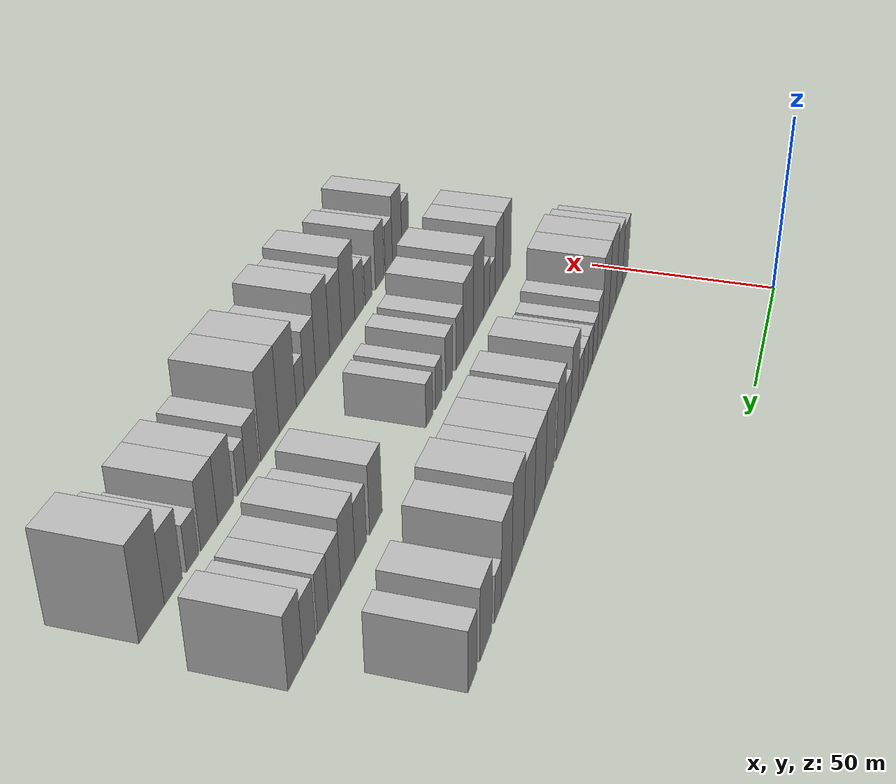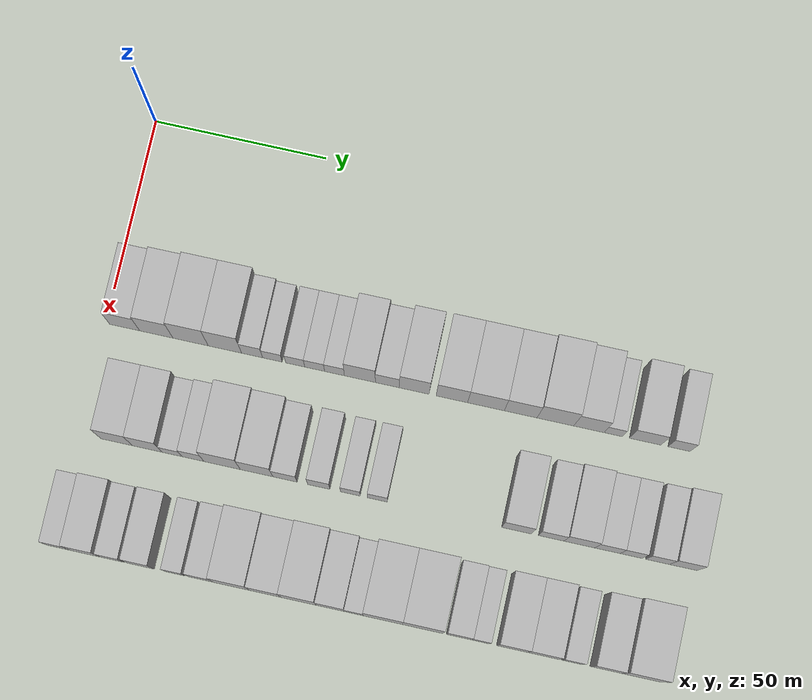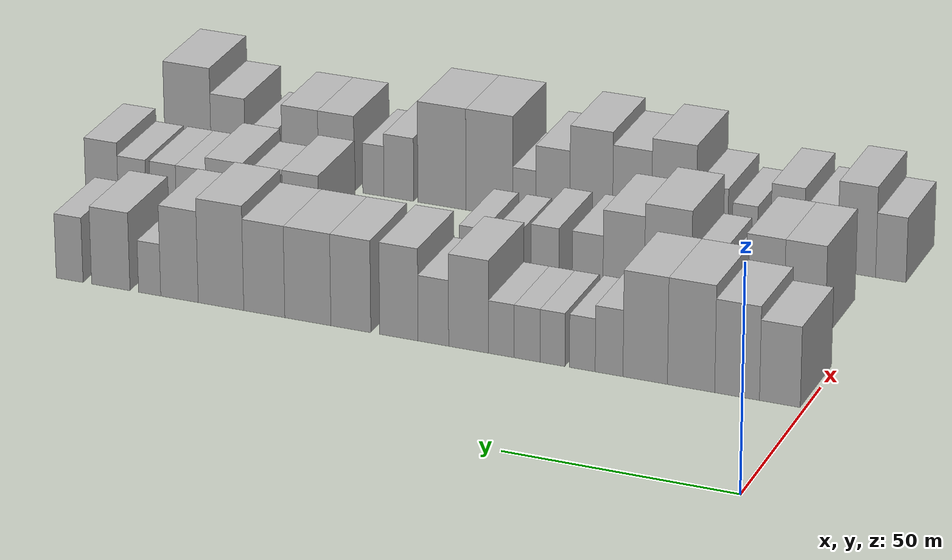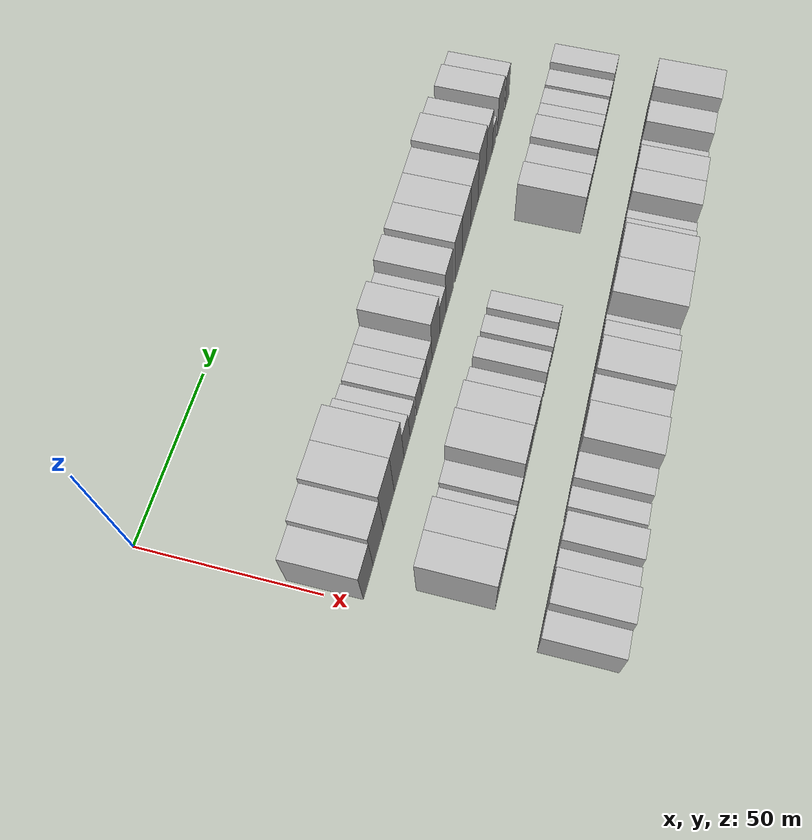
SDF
<sdf version="1.6">
 <world name="default">
  <model name="building_38">
   <static>1</static>
   <pose>50.0000 5.5079 0 0.000000 0.000000 0.000000</pose>
   <link name="link">
    <pose>0 0 9.00 0 0 0</pose>
    <collision name="collision"><geometry><box><size>20.0000 8.6827 18.0000</size></box></geometry></collision>
    <visual name="visual">
     <cast_shadows>0</cast_shadows>
     <geometry><box><size>20.0000 8.6827 18.0000</size></box></geometry>
     <material>
      <script>
       <uri>model://HANNAS_wall/materials/scripts</uri>
       <uri>model://HANNAS_wall/materials/textures</uri>
       <name>vrc/HANNAS_wall</name>
      </script>
     </material>
    </visual>
   </link>
  </model>
  <model name="building_39">
   <static>1</static>
   <pose>50.0000 14.6435 0 0.000000 0.000000 0.000000</pose>
   <link name="link">
    <pose>0 0 10.50 0 0 0</pose>
    <collision name="collision"><geometry><box><size>20.0000 9.5886 21.0000</size></box></geometry></collision>
    <visual name="visual">
     <cast_shadows>0</cast_shadows>
     <geometry><box><size>20.0000 9.5886 21.0000</size></box></geometry>
     <material>
      <script>
       <uri>model://HANNAS_wall/materials/scripts</uri>
       <uri>model://HANNAS_wall/materials/textures</uri>
       <name>vrc/HANNAS_wall</name>
      </script>
     </material>
    </visual>
   </link>
  </model>
  <model name="building_40">
   <static>1</static>
   <pose>50.0000 24.5207 0 0.000000 0.000000 0.000000</pose>
   <link name="link">
    <pose>0 0 12.00 0 0 0</pose>
    <collision name="collision"><geometry><box><size>20.0000 10.1659 24.0000</size></box></geometry></collision>
    <visual name="visual">
     <cast_shadows>0</cast_shadows>
     <geometry><box><size>20.0000 10.1659 24.0000</size></box></geometry>
     <material>
      <script>
       <uri>model://HANNAS_wall/materials/scripts</uri>
       <uri>model://HANNAS_wall/materials/textures</uri>
       <name>vrc/HANNAS_wall</name>
      </script>
     </material>
    </visual>
   </link>
  </model>
  <model name="building_41">
   <static>1</static>
   <pose>50.0000 34.4200 0 0.000000 0.000000 0.000000</pose>
   <link name="link">
    <pose>0 0 12.00 0 0 0</pose>
    <collision name="collision"><geometry><box><size>20.0000 9.6327 24.0000</size></box></geometry></collision>
    <visual name="visual">
     <cast_shadows>0</cast_shadows>
     <geometry><box><size>20.0000 9.6327 24.0000</size></box></geometry>
     <material>
      <script>
       <uri>model://HANNAS_wall/materials/scripts</uri>
       <uri>model://HANNAS_wall/materials/textures</uri>
       <name>vrc/HANNAS_wall</name>
      </script>
     </material>
    </visual>
   </link>
  </model>
  <model name="building_42">
   <static>1</static>
   <pose>50.0000 42.2608 0 0.000000 0.000000 0.000000</pose>
   <link name="link">
    <pose>0 0 7.50 0 0 0</pose>
    <collision name="collision"><geometry><box><size>20.0000 6.0489 15.0000</size></box></geometry></collision>
    <visual name="visual">
     <cast_shadows>0</cast_shadows>
     <geometry><box><size>20.0000 6.0489 15.0000</size></box></geometry>
     <material>
      <script>
       <uri>model://HANNAS_wall/materials/scripts</uri>
       <uri>model://HANNAS_wall/materials/textures</uri>
       <name>vrc/HANNAS_wall</name>
      </script>
     </material>
    </visual>
   </link>
  </model>
  <model name="building_43">
   <static>1</static>
   <pose>50.0000 48.0974 0 0.000000 0.000000 0.000000</pose>
   <link name="link">
    <pose>0 0 6.00 0 0 0</pose>
    <collision name="collision"><geometry><box><size>20.0000 5.6243 12.0000</size></box></geometry></collision>
    <visual name="visual">
     <cast_shadows>0</cast_shadows>
     <geometry><box><size>20.0000 5.6243 12.0000</size></box></geometry>
     <material>
      <script>
       <uri>model://HANNAS_wall/materials/scripts</uri>
       <uri>model://HANNAS_wall/materials/textures</uri>
       <name>vrc/HANNAS_wall</name>
      </script>
     </material>
    </visual>
   </link>
  </model>
  <model name="building_44">
   <static>1</static>
   <pose>50.0000 54.6362 0 0.000000 0.000000 0.000000</pose>
   <link name="link">
    <pose>0 0 6.00 0 0 0</pose>
    <collision name="collision"><geometry><box><size>20.0000 5.4533 12.0000</size></box></geometry></collision>
    <visual name="visual">
     <cast_shadows>0</cast_shadows>
     <geometry><box><size>20.0000 5.4533 12.0000</size></box></geometry>
     <material>
      <script>
       <uri>model://HANNAS_wall/materials/scripts</uri>
       <uri>model://HANNAS_wall/materials/textures</uri>
       <name>vrc/HANNAS_wall</name>
      </script>
     </material>
    </visual>
   </link>
  </model>
  <model name="building_45">
   <static>1</static>
   <pose>50.0000 60.2041 0 0.000000 0.000000 0.000000</pose>
   <link name="link">
    <pose>0 0 6.00 0 0 0</pose>
    <collision name="collision"><geometry><box><size>20.0000 5.6824 12.0000</size></box></geometry></collision>
    <visual name="visual">
     <cast_shadows>0</cast_shadows>
     <geometry><box><size>20.0000 5.6824 12.0000</size></box></geometry>
     <material>
      <script>
       <uri>model://HANNAS_wall/materials/scripts</uri>
       <uri>model://HANNAS_wall/materials/textures</uri>
       <name>vrc/HANNAS_wall</name>
      </script>
     </material>
    </visual>
   </link>
  </model>
  <model name="building_46">
   <static>1</static>
   <pose>50.0000 65.8773 0 0.000000 0.000000 0.000000</pose>
   <link name="link">
    <pose>0 0 6.00 0 0 0</pose>
    <collision name="collision"><geometry><box><size>20.0000 5.6639 12.0000</size></box></geometry></collision>
    <visual name="visual">
     <cast_shadows>0</cast_shadows>
     <geometry><box><size>20.0000 5.6639 12.0000</size></box></geometry>
     <material>
      <script>
       <uri>model://HANNAS_wall/materials/scripts</uri>
       <uri>model://HANNAS_wall/materials/textures</uri>
       <name>vrc/HANNAS_wall</name>
      </script>
     </material>
    </visual>
   </link>
  </model>
  <model name="building_47">
   <static>1</static>
   <pose>50.0000 73.1357 0 0.000000 0.000000 0.000000</pose>
   <link name="link">
    <pose>0 0 10.50 0 0 0</pose>
    <collision name="collision"><geometry><box><size>20.0000 8.8529 21.0000</size></box></geometry></collision>
    <visual name="visual">
     <cast_shadows>0</cast_shadows>
     <geometry><box><size>20.0000 8.8529 21.0000</size></box></geometry>
     <material>
      <script>
       <uri>model://HANNAS_wall/materials/scripts</uri>
       <uri>model://HANNAS_wall/materials/textures</uri>
       <name>vrc/HANNAS_wall</name>
      </script>
     </material>
    </visual>
   </link>
  </model>
  <model name="building_48">
   <static>1</static>
   <pose>50.0000 80.9714 0 0.000000 0.000000 0.000000</pose>
   <link name="link">
    <pose>0 0 7.50 0 0 0</pose>
    <collision name="collision"><geometry><box><size>20.0000 6.8185 15.0000</size></box></geometry></collision>
    <visual name="visual">
     <cast_shadows>0</cast_shadows>
     <geometry><box><size>20.0000 6.8185 15.0000</size></box></geometry>
     <material>
      <script>
       <uri>model://HANNAS_wall/materials/scripts</uri>
       <uri>model://HANNAS_wall/materials/textures</uri>
       <name>vrc/HANNAS_wall</name>
      </script>
     </material>
    </visual>
   </link>
  </model>
  <model name="building_49">
   <static>1</static>
   <pose>50.0000 88.6767 0 0.000000 0.000000 0.000000</pose>
   <link name="link">
    <pose>0 0 10.50 0 0 0</pose>
    <collision name="collision"><geometry><box><size>20.0000 8.5923 21.0000</size></box></geometry></collision>
    <visual name="visual">
     <cast_shadows>0</cast_shadows>
     <geometry><box><size>20.0000 8.5923 21.0000</size></box></geometry>
     <material>
      <script>
       <uri>model://HANNAS_wall/materials/scripts</uri>
       <uri>model://HANNAS_wall/materials/textures</uri>
       <name>vrc/HANNAS_wall</name>
      </script>
     </material>
    </visual>
   </link>
  </model>
  <model name="building_50">
   <static>1</static>
   <pose>50.0000 99.4753 0 0.000000 0.000000 0.000000</pose>
   <link name="link">
    <pose>0 0 10.50 0 0 0</pose>
    <collision name="collision"><geometry><box><size>20.0000 9.0049 21.0000</size></box></geometry></collision>
    <visual name="visual">
     <cast_shadows>0</cast_shadows>
     <geometry><box><size>20.0000 9.0049 21.0000</size></box></geometry>
     <material>
      <script>
       <uri>model://HANNAS_wall/materials/scripts</uri>
       <uri>model://HANNAS_wall/materials/textures</uri>
       <name>vrc/HANNAS_wall</name>
      </script>
     </material>
    </visual>
   </link>
  </model>
  <model name="building_51">
   <static>1</static>
   <pose>50.0000 109.2028 0 0.000000 0.000000 0.000000</pose>
   <link name="link">
    <pose>0 0 10.50 0 0 0</pose>
    <collision name="collision"><geometry><box><size>20.0000 10.4499 21.0000</size></box></geometry></collision>
    <visual name="visual">
     <cast_shadows>0</cast_shadows>
     <geometry><box><size>20.0000 10.4499 21.0000</size></box></geometry>
     <material>
      <script>
       <uri>model://HANNAS_wall/materials/scripts</uri>
       <uri>model://HANNAS_wall/materials/textures</uri>
       <name>vrc/HANNAS_wall</name>
      </script>
     </material>
    </visual>
   </link>
  </model>
  <model name="building_52">
   <static>1</static>
   <pose>50.0000 119.1174 0 0.000000 0.000000 0.000000</pose>
   <link name="link">
    <pose>0 0 10.50 0 0 0</pose>
    <collision name="collision"><geometry><box><size>20.0000 9.3793 21.0000</size></box></geometry></collision>
    <visual name="visual">
     <cast_shadows>0</cast_shadows>
     <geometry><box><size>20.0000 9.3793 21.0000</size></box></geometry>
     <material>
      <script>
       <uri>model://HANNAS_wall/materials/scripts</uri>
       <uri>model://HANNAS_wall/materials/textures</uri>
       <name>vrc/HANNAS_wall</name>
      </script>
     </material>
    </visual>
   </link>
  </model>
  <model name="building_53">
   <static>1</static>
   <pose>50.0000 129.0357 0 0.000000 0.000000 0.000000</pose>
   <link name="link">
    <pose>0 0 12.00 0 0 0</pose>
    <collision name="collision"><geometry><box><size>20.0000 10.4573 24.0000</size></box></geometry></collision>
    <visual name="visual">
     <cast_shadows>0</cast_shadows>
     <geometry><box><size>20.0000 10.4573 24.0000</size></box></geometry>
     <material>
      <script>
       <uri>model://HANNAS_wall/materials/scripts</uri>
       <uri>model://HANNAS_wall/materials/textures</uri>
       <name>vrc/HANNAS_wall</name>
      </script>
     </material>
    </visual>
   </link>
  </model>
  <model name="building_54">
   <static>1</static>
   <pose>50.0000 138.5968 0 0.000000 0.000000 0.000000</pose>
   <link name="link">
    <pose>0 0 10.50 0 0 0</pose>
    <collision name="collision"><geometry><box><size>20.0000 8.6649 21.0000</size></box></geometry></collision>
    <visual name="visual">
     <cast_shadows>0</cast_shadows>
     <geometry><box><size>20.0000 8.6649 21.0000</size></box></geometry>
     <material>
      <script>
       <uri>model://HANNAS_wall/materials/scripts</uri>
       <uri>model://HANNAS_wall/materials/textures</uri>
       <name>vrc/HANNAS_wall</name>
      </script>
     </material>
    </visual>
   </link>
  </model>
  <model name="building_55">
   <static>1</static>
   <pose>50.0000 145.4985 0 0.000000 0.000000 0.000000</pose>
   <link name="link">
    <pose>0 0 6.00 0 0 0</pose>
    <collision name="collision"><geometry><box><size>20.0000 5.1385 12.0000</size></box></geometry></collision>
    <visual name="visual">
     <cast_shadows>0</cast_shadows>
     <geometry><box><size>20.0000 5.1385 12.0000</size></box></geometry>
     <material>
      <script>
       <uri>model://HANNAS_wall/materials/scripts</uri>
       <uri>model://HANNAS_wall/materials/textures</uri>
       <name>vrc/HANNAS_wall</name>
      </script>
     </material>
    </visual>
   </link>
  </model>
  <model name="building_56">
   <static>1</static>
   <pose>50.0000 154.5422 0 0.000000 0.000000 0.000000</pose>
   <link name="link">
    <pose>0 0 9.00 0 0 0</pose>
    <collision name="collision"><geometry><box><size>20.0000 8.9488 18.0000</size></box></geometry></collision>
    <visual name="visual">
     <cast_shadows>0</cast_shadows>
     <geometry><box><size>20.0000 8.9488 18.0000</size></box></geometry>
     <material>
      <script>
       <uri>model://HANNAS_wall/materials/scripts</uri>
       <uri>model://HANNAS_wall/materials/textures</uri>
       <name>vrc/HANNAS_wall</name>
      </script>
     </material>
    </visual>
   </link>
  </model>
  <model name="building_57">
   <static>1</static>
   <pose>50.0000 164.1577 0 0.000000 0.000000 0.000000</pose>
   <link name="link">
    <pose>0 0 7.50 0 0 0</pose>
    <collision name="collision"><geometry><box><size>20.0000 6.2822 15.0000</size></box></geometry></collision>
    <visual name="visual">
     <cast_shadows>0</cast_shadows>
     <geometry><box><size>20.0000 6.2822 15.0000</size></box></geometry>
     <material>
      <script>
       <uri>model://HANNAS_wall/materials/scripts</uri>
       <uri>model://HANNAS_wall/materials/textures</uri>
       <name>vrc/HANNAS_wall</name>
      </script>
     </material>
    </visual>
   </link>
  </model>
  <model name="building_115">
   <static>1</static>
   <pose>82.0000 11.0297 0 0.000000 0.000000 0.000000</pose>
   <link name="link">
    <pose>0 0 10.50 0 0 0</pose>
    <collision name="collision"><geometry><box><size>20.0000 9.0230 21.0000</size></box></geometry></collision>
    <visual name="visual">
     <cast_shadows>0</cast_shadows>
     <geometry><box><size>20.0000 9.0230 21.0000</size></box></geometry>
     <material>
      <script>
       <uri>model://HANNAS_wall/materials/scripts</uri>
       <uri>model://HANNAS_wall/materials/textures</uri>
       <name>vrc/HANNAS_wall</name>
      </script>
     </material>
    </visual>
   </link>
  </model>
  <model name="building_116">
   <static>1</static>
   <pose>82.0000 19.7604 0 0.000000 0.000000 0.000000</pose>
   <link name="link">
    <pose>0 0 10.50 0 0 0</pose>
    <collision name="collision"><geometry><box><size>20.0000 8.4385 21.0000</size></box></geometry></collision>
    <visual name="visual">
     <cast_shadows>0</cast_shadows>
     <geometry><box><size>20.0000 8.4385 21.0000</size></box></geometry>
     <material>
      <script>
       <uri>model://HANNAS_wall/materials/scripts</uri>
       <uri>model://HANNAS_wall/materials/textures</uri>
       <name>vrc/HANNAS_wall</name>
      </script>
     </material>
    </visual>
   </link>
  </model>
  <model name="building_117">
   <static>1</static>
   <pose>82.0000 26.8236 0 0.000000 0.000000 0.000000</pose>
   <link name="link">
    <pose>0 0 6.00 0 0 0</pose>
    <collision name="collision"><geometry><box><size>20.0000 5.6878 12.0000</size></box></geometry></collision>
    <visual name="visual">
     <cast_shadows>0</cast_shadows>
     <geometry><box><size>20.0000 5.6878 12.0000</size></box></geometry>
     <material>
      <script>
       <uri>model://HANNAS_wall/materials/scripts</uri>
       <uri>model://HANNAS_wall/materials/textures</uri>
       <name>vrc/HANNAS_wall</name>
      </script>
     </material>
    </visual>
   </link>
  </model>
  <model name="building_118">
   <static>1</static>
   <pose>82.0000 32.8064 0 0.000000 0.000000 0.000000</pose>
   <link name="link">
    <pose>0 0 7.50 0 0 0</pose>
    <collision name="collision"><geometry><box><size>20.0000 6.2777 15.0000</size></box></geometry></collision>
    <visual name="visual">
     <cast_shadows>0</cast_shadows>
     <geometry><box><size>20.0000 6.2777 15.0000</size></box></geometry>
     <material>
      <script>
       <uri>model://HANNAS_wall/materials/scripts</uri>
       <uri>model://HANNAS_wall/materials/textures</uri>
       <name>vrc/HANNAS_wall</name>
      </script>
     </material>
    </visual>
   </link>
  </model>
  <model name="building_119">
   <static>1</static>
   <pose>82.0000 41.1427 0 0.000000 0.000000 0.000000</pose>
   <link name="link">
    <pose>0 0 12.00 0 0 0</pose>
    <collision name="collision"><geometry><box><size>20.0000 10.3948 24.0000</size></box></geometry></collision>
    <visual name="visual">
     <cast_shadows>0</cast_shadows>
     <geometry><box><size>20.0000 10.3948 24.0000</size></box></geometry>
     <material>
      <script>
       <uri>model://HANNAS_wall/materials/scripts</uri>
       <uri>model://HANNAS_wall/materials/textures</uri>
       <name>vrc/HANNAS_wall</name>
      </script>
     </material>
    </visual>
   </link>
  </model>
  <model name="building_120">
   <static>1</static>
   <pose>82.0000 50.9652 0 0.000000 0.000000 0.000000</pose>
   <link name="link">
    <pose>0 0 10.50 0 0 0</pose>
    <collision name="collision"><geometry><box><size>20.0000 9.2502 21.0000</size></box></geometry></collision>
    <visual name="visual">
     <cast_shadows>0</cast_shadows>
     <geometry><box><size>20.0000 9.2502 21.0000</size></box></geometry>
     <material>
      <script>
       <uri>model://HANNAS_wall/materials/scripts</uri>
       <uri>model://HANNAS_wall/materials/textures</uri>
       <name>vrc/HANNAS_wall</name>
      </script>
     </material>
    </visual>
   </link>
  </model>
  <model name="building_121">
   <static>1</static>
   <pose>82.0000 59.0543 0 0.000000 0.000000 0.000000</pose>
   <link name="link">
    <pose>0 0 7.50 0 0 0</pose>
    <collision name="collision"><geometry><box><size>20.0000 6.9281 15.0000</size></box></geometry></collision>
    <visual name="visual">
     <cast_shadows>0</cast_shadows>
     <geometry><box><size>20.0000 6.9281 15.0000</size></box></geometry>
     <material>
      <script>
       <uri>model://HANNAS_wall/materials/scripts</uri>
       <uri>model://HANNAS_wall/materials/textures</uri>
       <name>vrc/HANNAS_wall</name>
      </script>
     </material>
    </visual>
   </link>
  </model>
  <model name="building_122">
   <static>1</static>
   <pose>82.0000 68.6652 0 0.000000 0.000000 0.000000</pose>
   <link name="link">
    <pose>0 0 7.50 0 0 0</pose>
    <collision name="collision"><geometry><box><size>20.0000 6.2937 15.0000</size></box></geometry></collision>
    <visual name="visual">
     <cast_shadows>0</cast_shadows>
     <geometry><box><size>20.0000 6.2937 15.0000</size></box></geometry>
     <material>
      <script>
       <uri>model://HANNAS_wall/materials/scripts</uri>
       <uri>model://HANNAS_wall/materials/textures</uri>
       <name>vrc/HANNAS_wall</name>
      </script>
     </material>
    </visual>
   </link>
  </model>
  <model name="building_123">
   <static>1</static>
   <pose>82.0000 77.6128 0 0.000000 0.000000 0.000000</pose>
   <link name="link">
    <pose>0 0 6.00 0 0 0</pose>
    <collision name="collision"><geometry><box><size>20.0000 5.6014 12.0000</size></box></geometry></collision>
    <visual name="visual">
     <cast_shadows>0</cast_shadows>
     <geometry><box><size>20.0000 5.6014 12.0000</size></box></geometry>
     <material>
      <script>
       <uri>model://HANNAS_wall/materials/scripts</uri>
       <uri>model://HANNAS_wall/materials/textures</uri>
       <name>vrc/HANNAS_wall</name>
      </script>
     </material>
    </visual>
   </link>
  </model>
  <model name="building_124">
   <static>1</static>
   <pose>82.0000 85.2448 0 0.000000 0.000000 0.000000</pose>
   <link name="link">
    <pose>0 0 6.00 0 0 0</pose>
    <collision name="collision"><geometry><box><size>20.0000 5.6626 12.0000</size></box></geometry></collision>
    <visual name="visual">
     <cast_shadows>0</cast_shadows>
     <geometry><box><size>20.0000 5.6626 12.0000</size></box></geometry>
     <material>
      <script>
       <uri>model://HANNAS_wall/materials/scripts</uri>
       <uri>model://HANNAS_wall/materials/textures</uri>
       <name>vrc/HANNAS_wall</name>
      </script>
     </material>
    </visual>
   </link>
  </model>
  <model name="building_125">
   <static>1</static>
   <pose>82.0000 124.6695 0 0.000000 0.000000 0.000000</pose>
   <link name="link">
    <pose>0 0 9.00 0 0 0</pose>
    <collision name="collision"><geometry><box><size>20.0000 8.3956 18.0000</size></box></geometry></collision>
    <visual name="visual">
     <cast_shadows>0</cast_shadows>
     <geometry><box><size>20.0000 8.3956 18.0000</size></box></geometry>
     <material>
      <script>
       <uri>model://HANNAS_wall/materials/scripts</uri>
       <uri>model://HANNAS_wall/materials/textures</uri>
       <name>vrc/HANNAS_wall</name>
      </script>
     </material>
    </visual>
   </link>
  </model>
  <model name="building_126">
   <static>1</static>
   <pose>82.0000 134.4779 0 0.000000 0.000000 0.000000</pose>
   <link name="link">
    <pose>0 0 7.50 0 0 0</pose>
    <collision name="collision"><geometry><box><size>20.0000 7.2212 15.0000</size></box></geometry></collision>
    <visual name="visual">
     <cast_shadows>0</cast_shadows>
     <geometry><box><size>20.0000 7.2212 15.0000</size></box></geometry>
     <material>
      <script>
       <uri>model://HANNAS_wall/materials/scripts</uri>
       <uri>model://HANNAS_wall/materials/textures</uri>
       <name>vrc/HANNAS_wall</name>
      </script>
     </material>
    </visual>
   </link>
  </model>
  <model name="building_127">
   <static>1</static>
   <pose>82.0000 142.4608 0 0.000000 0.000000 0.000000</pose>
   <link name="link">
    <pose>0 0 9.00 0 0 0</pose>
    <collision name="collision"><geometry><box><size>20.0000 8.7448 18.0000</size></box></geometry></collision>
    <visual name="visual">
     <cast_shadows>0</cast_shadows>
     <geometry><box><size>20.0000 8.7448 18.0000</size></box></geometry>
     <material>
      <script>
       <uri>model://HANNAS_wall/materials/scripts</uri>
       <uri>model://HANNAS_wall/materials/textures</uri>
       <name>vrc/HANNAS_wall</name>
      </script>
     </material>
    </visual>
   </link>
  </model>
  <model name="building_128">
   <static>1</static>
   <pose>82.0000 150.3824 0 0.000000 0.000000 0.000000</pose>
   <link name="link">
    <pose>0 0 7.50 0 0 0</pose>
    <collision name="collision"><geometry><box><size>20.0000 7.0984 15.0000</size></box></geometry></collision>
    <visual name="visual">
     <cast_shadows>0</cast_shadows>
     <geometry><box><size>20.0000 7.0984 15.0000</size></box></geometry>
     <material>
      <script>
       <uri>model://HANNAS_wall/materials/scripts</uri>
       <uri>model://HANNAS_wall/materials/textures</uri>
       <name>vrc/HANNAS_wall</name>
      </script>
     </material>
    </visual>
   </link>
  </model>
  <model name="building_129">
   <static>1</static>
   <pose>82.0000 157.0256 0 0.000000 0.000000 0.000000</pose>
   <link name="link">
    <pose>0 0 7.50 0 0 0</pose>
    <collision name="collision"><geometry><box><size>20.0000 6.1881 15.0000</size></box></geometry></collision>
    <visual name="visual">
     <cast_shadows>0</cast_shadows>
     <geometry><box><size>20.0000 6.1881 15.0000</size></box></geometry>
     <material>
      <script>
       <uri>model://HANNAS_wall/materials/scripts</uri>
       <uri>model://HANNAS_wall/materials/textures</uri>
       <name>vrc/HANNAS_wall</name>
      </script>
     </material>
    </visual>
   </link>
  </model>
  <model name="building_130">
   <static>1</static>
   <pose>82.0000 164.4597 0 0.000000 0.000000 0.000000</pose>
   <link name="link">
    <pose>0 0 7.50 0 0 0</pose>
    <collision name="collision"><geometry><box><size>20.0000 6.6800 15.0000</size></box></geometry></collision>
    <visual name="visual">
     <cast_shadows>0</cast_shadows>
     <geometry><box><size>20.0000 6.6800 15.0000</size></box></geometry>
     <material>
      <script>
       <uri>model://HANNAS_wall/materials/scripts</uri>
       <uri>model://HANNAS_wall/materials/textures</uri>
       <name>vrc/HANNAS_wall</name>
      </script>
     </material>
    </visual>
   </link>
  </model>
  <model name="building_131">
   <static>1</static>
   <pose>82.0000 171.6829 0 0.000000 0.000000 0.000000</pose>
   <link name="link">
    <pose>0 0 9.00 0 0 0</pose>
    <collision name="collision"><geometry><box><size>20.0000 7.7664 18.0000</size></box></geometry></collision>
    <visual name="visual">
     <cast_shadows>0</cast_shadows>
     <geometry><box><size>20.0000 7.7664 18.0000</size></box></geometry>
     <material>
      <script>
       <uri>model://HANNAS_wall/materials/scripts</uri>
       <uri>model://HANNAS_wall/materials/textures</uri>
       <name>vrc/HANNAS_wall</name>
      </script>
     </material>
    </visual>
   </link>
  </model>
  <model name="building_187">
   <static>1</static>
   <pose>114.0000 2.4577 0 0.000000 0.000000 0.000000</pose>
   <link name="link">
    <pose>0 0 7.50 0 0 0</pose>
    <collision name="collision"><geometry><box><size>20.0000 6.7520 15.0000</size></box></geometry></collision>
    <visual name="visual">
     <cast_shadows>0</cast_shadows>
     <geometry><box><size>20.0000 6.7520 15.0000</size></box></geometry>
     <material>
      <script>
       <uri>model://HANNAS_wall/materials/scripts</uri>
       <uri>model://HANNAS_wall/materials/textures</uri>
       <name>vrc/HANNAS_wall</name>
      </script>
     </material>
    </visual>
   </link>
  </model>
  <model name="building_188">
   <static>1</static>
   <pose>114.0000 10.1117 0 0.000000 0.000000 0.000000</pose>
   <link name="link">
    <pose>0 0 10.50 0 0 0</pose>
    <collision name="collision"><geometry><box><size>20.0000 8.5560 21.0000</size></box></geometry></collision>
    <visual name="visual">
     <cast_shadows>0</cast_shadows>
     <geometry><box><size>20.0000 8.5560 21.0000</size></box></geometry>
     <material>
      <script>
       <uri>model://HANNAS_wall/materials/scripts</uri>
       <uri>model://HANNAS_wall/materials/textures</uri>
       <name>vrc/HANNAS_wall</name>
      </script>
     </material>
    </visual>
   </link>
  </model>
  <model name="building_189">
   <static>1</static>
   <pose>114.0000 17.6340 0 0.000000 0.000000 0.000000</pose>
   <link name="link">
    <pose>0 0 7.50 0 0 0</pose>
    <collision name="collision"><geometry><box><size>20.0000 6.4886 15.0000</size></box></geometry></collision>
    <visual name="visual">
     <cast_shadows>0</cast_shadows>
     <geometry><box><size>20.0000 6.4886 15.0000</size></box></geometry>
     <material>
      <script>
       <uri>model://HANNAS_wall/materials/scripts</uri>
       <uri>model://HANNAS_wall/materials/textures</uri>
       <name>vrc/HANNAS_wall</name>
      </script>
     </material>
    </visual>
   </link>
  </model>
  <model name="building_190">
   <static>1</static>
   <pose>114.0000 25.6391 0 0.000000 0.000000 0.000000</pose>
   <link name="link">
    <pose>0 0 9.00 0 0 0</pose>
    <collision name="collision"><geometry><box><size>20.0000 7.5216 18.0000</size></box></geometry></collision>
    <visual name="visual">
     <cast_shadows>0</cast_shadows>
     <geometry><box><size>20.0000 7.5216 18.0000</size></box></geometry>
     <material>
      <script>
       <uri>model://HANNAS_wall/materials/scripts</uri>
       <uri>model://HANNAS_wall/materials/textures</uri>
       <name>vrc/HANNAS_wall</name>
      </script>
     </material>
    </visual>
   </link>
  </model>
  <model name="building_191">
   <static>1</static>
   <pose>114.0000 35.2346 0 0.000000 0.000000 0.000000</pose>
   <link name="link">
    <pose>0 0 6.00 0 0 0</pose>
    <collision name="collision"><geometry><box><size>20.0000 5.6695 12.0000</size></box></geometry></collision>
    <visual name="visual">
     <cast_shadows>0</cast_shadows>
     <geometry><box><size>20.0000 5.6695 12.0000</size></box></geometry>
     <material>
      <script>
       <uri>model://HANNAS_wall/materials/scripts</uri>
       <uri>model://HANNAS_wall/materials/textures</uri>
       <name>vrc/HANNAS_wall</name>
      </script>
     </material>
    </visual>
   </link>
  </model>
  <model name="building_192">
   <static>1</static>
   <pose>114.0000 42.6597 0 0.000000 0.000000 0.000000</pose>
   <link name="link">
    <pose>0 0 7.50 0 0 0</pose>
    <collision name="collision"><geometry><box><size>20.0000 7.1807 15.0000</size></box></geometry></collision>
    <visual name="visual">
     <cast_shadows>0</cast_shadows>
     <geometry><box><size>20.0000 7.1807 15.0000</size></box></geometry>
     <material>
      <script>
       <uri>model://HANNAS_wall/materials/scripts</uri>
       <uri>model://HANNAS_wall/materials/textures</uri>
       <name>vrc/HANNAS_wall</name>
      </script>
     </material>
    </visual>
   </link>
  </model>
  <model name="building_193">
   <static>1</static>
   <pose>114.0000 51.3351 0 0.000000 0.000000 0.000000</pose>
   <link name="link">
    <pose>0 0 12.00 0 0 0</pose>
    <collision name="collision"><geometry><box><size>20.0000 10.1701 24.0000</size></box></geometry></collision>
    <visual name="visual">
     <cast_shadows>0</cast_shadows>
     <geometry><box><size>20.0000 10.1701 24.0000</size></box></geometry>
     <material>
      <script>
       <uri>model://HANNAS_wall/materials/scripts</uri>
       <uri>model://HANNAS_wall/materials/textures</uri>
       <name>vrc/HANNAS_wall</name>
      </script>
     </material>
    </visual>
   </link>
  </model>
  <model name="building_194">
   <static>1</static>
   <pose>114.0000 60.8844 0 0.000000 0.000000 0.000000</pose>
   <link name="link">
    <pose>0 0 10.50 0 0 0</pose>
    <collision name="collision"><geometry><box><size>20.0000 8.9285 21.0000</size></box></geometry></collision>
    <visual name="visual">
     <cast_shadows>0</cast_shadows>
     <geometry><box><size>20.0000 8.9285 21.0000</size></box></geometry>
     <material>
      <script>
       <uri>model://HANNAS_wall/materials/scripts</uri>
       <uri>model://HANNAS_wall/materials/textures</uri>
       <name>vrc/HANNAS_wall</name>
      </script>
     </material>
    </visual>
   </link>
  </model>
  <model name="building_195">
   <static>1</static>
   <pose>114.0000 70.2712 0 0.000000 0.000000 0.000000</pose>
   <link name="link">
    <pose>0 0 12.00 0 0 0</pose>
    <collision name="collision"><geometry><box><size>20.0000 9.8452 24.0000</size></box></geometry></collision>
    <visual name="visual">
     <cast_shadows>0</cast_shadows>
     <geometry><box><size>20.0000 9.8452 24.0000</size></box></geometry>
     <material>
      <script>
       <uri>model://HANNAS_wall/materials/scripts</uri>
       <uri>model://HANNAS_wall/materials/textures</uri>
       <name>vrc/HANNAS_wall</name>
      </script>
     </material>
    </visual>
   </link>
  </model>
  <model name="building_196">
   <static>1</static>
   <pose>114.0000 79.1539 0 0.000000 0.000000 0.000000</pose>
   <link name="link">
    <pose>0 0 9.00 0 0 0</pose>
    <collision name="collision"><geometry><box><size>20.0000 7.9202 18.0000</size></box></geometry></collision>
    <visual name="visual">
     <cast_shadows>0</cast_shadows>
     <geometry><box><size>20.0000 7.9202 18.0000</size></box></geometry>
     <material>
      <script>
       <uri>model://HANNAS_wall/materials/scripts</uri>
       <uri>model://HANNAS_wall/materials/textures</uri>
       <name>vrc/HANNAS_wall</name>
      </script>
     </material>
    </visual>
   </link>
  </model>
  <model name="building_197">
   <static>1</static>
   <pose>114.0000 85.7669 0 0.000000 0.000000 0.000000</pose>
   <link name="link">
    <pose>0 0 6.00 0 0 0</pose>
    <collision name="collision"><geometry><box><size>20.0000 5.3058 12.0000</size></box></geometry></collision>
    <visual name="visual">
     <cast_shadows>0</cast_shadows>
     <geometry><box><size>20.0000 5.3058 12.0000</size></box></geometry>
     <material>
      <script>
       <uri>model://HANNAS_wall/materials/scripts</uri>
       <uri>model://HANNAS_wall/materials/textures</uri>
       <name>vrc/HANNAS_wall</name>
      </script>
     </material>
    </visual>
   </link>
  </model>
  <model name="building_198">
   <static>1</static>
   <pose>114.0000 93.9268 0 0.000000 0.000000 0.000000</pose>
   <link name="link">
    <pose>0 0 12.00 0 0 0</pose>
    <collision name="collision"><geometry><box><size>20.0000 11.0141 24.0000</size></box></geometry></collision>
    <visual name="visual">
     <cast_shadows>0</cast_shadows>
     <geometry><box><size>20.0000 11.0141 24.0000</size></box></geometry>
     <material>
      <script>
       <uri>model://HANNAS_wall/materials/scripts</uri>
       <uri>model://HANNAS_wall/materials/textures</uri>
       <name>vrc/HANNAS_wall</name>
      </script>
     </material>
    </visual>
   </link>
  </model>
  <model name="building_199">
   <static>1</static>
   <pose>114.0000 105.0848 0 0.000000 0.000000 0.000000</pose>
   <link name="link">
    <pose>0 0 12.00 0 0 0</pose>
    <collision name="collision"><geometry><box><size>20.0000 11.3018 24.0000</size></box></geometry></collision>
    <visual name="visual">
     <cast_shadows>0</cast_shadows>
     <geometry><box><size>20.0000 11.3018 24.0000</size></box></geometry>
     <material>
      <script>
       <uri>model://HANNAS_wall/materials/scripts</uri>
       <uri>model://HANNAS_wall/materials/textures</uri>
       <name>vrc/HANNAS_wall</name>
      </script>
     </material>
    </visual>
   </link>
  </model>
  <model name="building_200">
   <static>1</static>
   <pose>114.0000 115.2633 0 0.000000 0.000000 0.000000</pose>
   <link name="link">
    <pose>0 0 7.50 0 0 0</pose>
    <collision name="collision"><geometry><box><size>20.0000 7.0552 15.0000</size></box></geometry></collision>
    <visual name="visual">
     <cast_shadows>0</cast_shadows>
     <geometry><box><size>20.0000 7.0552 15.0000</size></box></geometry>
     <material>
      <script>
       <uri>model://HANNAS_wall/materials/scripts</uri>
       <uri>model://HANNAS_wall/materials/textures</uri>
       <name>vrc/HANNAS_wall</name>
      </script>
     </material>
    </visual>
   </link>
  </model>
  <model name="building_201">
   <static>1</static>
   <pose>114.0000 121.3080 0 0.000000 0.000000 0.000000</pose>
   <link name="link">
    <pose>0 0 6.00 0 0 0</pose>
    <collision name="collision"><geometry><box><size>20.0000 5.0342 12.0000</size></box></geometry></collision>
    <visual name="visual">
     <cast_shadows>0</cast_shadows>
     <geometry><box><size>20.0000 5.0342 12.0000</size></box></geometry>
     <material>
      <script>
       <uri>model://HANNAS_wall/materials/scripts</uri>
       <uri>model://HANNAS_wall/materials/textures</uri>
       <name>vrc/HANNAS_wall</name>
      </script>
     </material>
    </visual>
   </link>
  </model>
  <model name="building_202">
   <static>1</static>
   <pose>114.0000 130.1090 0 0.000000 0.000000 0.000000</pose>
   <link name="link">
    <pose>0 0 9.00 0 0 0</pose>
    <collision name="collision"><geometry><box><size>20.0000 8.5677 18.0000</size></box></geometry></collision>
    <visual name="visual">
     <cast_shadows>0</cast_shadows>
     <geometry><box><size>20.0000 8.5677 18.0000</size></box></geometry>
     <material>
      <script>
       <uri>model://HANNAS_wall/materials/scripts</uri>
       <uri>model://HANNAS_wall/materials/textures</uri>
       <name>vrc/HANNAS_wall</name>
      </script>
     </material>
    </visual>
   </link>
  </model>
  <model name="building_203">
   <static>1</static>
   <pose>114.0000 138.7423 0 0.000000 0.000000 0.000000</pose>
   <link name="link">
    <pose>0 0 9.00 0 0 0</pose>
    <collision name="collision"><geometry><box><size>20.0000 8.6989 18.0000</size></box></geometry></collision>
    <visual name="visual">
     <cast_shadows>0</cast_shadows>
     <geometry><box><size>20.0000 8.6989 18.0000</size></box></geometry>
     <material>
      <script>
       <uri>model://HANNAS_wall/materials/scripts</uri>
       <uri>model://HANNAS_wall/materials/textures</uri>
       <name>vrc/HANNAS_wall</name>
      </script>
     </material>
    </visual>
   </link>
  </model>
  <model name="building_204">
   <static>1</static>
   <pose>114.0000 147.0313 0 0.000000 0.000000 0.000000</pose>
   <link name="link">
    <pose>0 0 6.00 0 0 0</pose>
    <collision name="collision"><geometry><box><size>20.0000 5.8793 12.0000</size></box></geometry></collision>
    <visual name="visual">
     <cast_shadows>0</cast_shadows>
     <geometry><box><size>20.0000 5.8793 12.0000</size></box></geometry>
     <material>
      <script>
       <uri>model://HANNAS_wall/materials/scripts</uri>
       <uri>model://HANNAS_wall/materials/textures</uri>
       <name>vrc/HANNAS_wall</name>
      </script>
     </material>
    </visual>
   </link>
  </model>
  <model name="building_205">
   <static>1</static>
   <pose>114.0000 156.1073 0 0.000000 0.000000 0.000000</pose>
   <link name="link">
    <pose>0 0 9.00 0 0 0</pose>
    <collision name="collision"><geometry><box><size>20.0000 8.2725 18.0000</size></box></geometry></collision>
    <visual name="visual">
     <cast_shadows>0</cast_shadows>
     <geometry><box><size>20.0000 8.2725 18.0000</size></box></geometry>
     <material>
      <script>
       <uri>model://HANNAS_wall/materials/scripts</uri>
       <uri>model://HANNAS_wall/materials/textures</uri>
       <name>vrc/HANNAS_wall</name>
      </script>
     </material>
    </visual>
   </link>
  </model>
  <model name="building_206">
   <static>1</static>
   <pose>114.0000 165.8675 0 0.000000 0.000000 0.000000</pose>
   <link name="link">
    <pose>0 0 12.00 0 0 0</pose>
    <collision name="collision"><geometry><box><size>20.0000 11.2479 24.0000</size></box></geometry></collision>
    <visual name="visual">
     <cast_shadows>0</cast_shadows>
     <geometry><box><size>20.0000 11.2479 24.0000</size></box></geometry>
     <material>
      <script>
       <uri>model://HANNAS_wall/materials/scripts</uri>
       <uri>model://HANNAS_wall/materials/textures</uri>
       <name>vrc/HANNAS_wall</name>
      </script>
     </material>
    </visual>
   </link>
  </model>
 </world>
</sdf>
